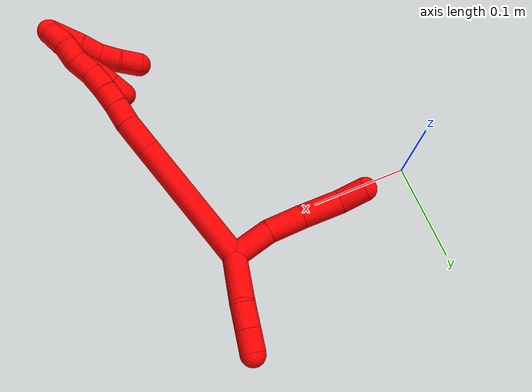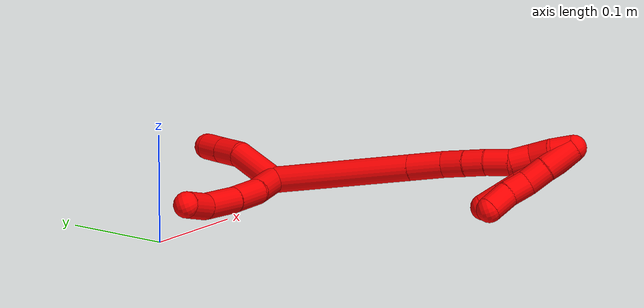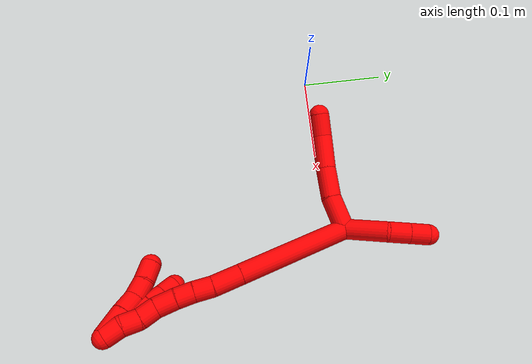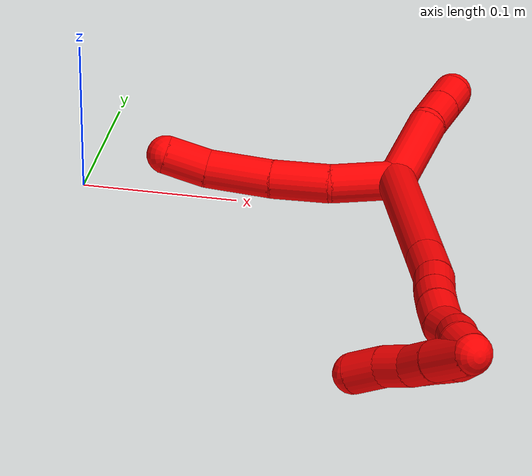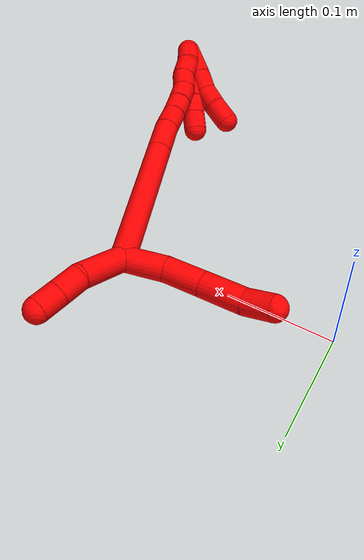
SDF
<sdf version="1.7">
 <world name="default">
  <model name="2">
   <static>0</static>
   <link name="2">
    <collision name="collision-cylinder-e_1_2_8">
     <pose>-0.017169 -0.009959 -0.006948 2.17993 -0.955213 -1.56291</pose>
     <geometry><cylinder><radius>0.0125</radius><length>0.042058</length></cylinder></geometry>
     <surface>
      <friction><ode><mu>1.16</mu><mu2>1.16</mu2><slip1>0</slip1><slip2>0</slip2></ode></friction>
      <contact><ode><kp>1e+06</kp><kd>1</kd><max_vel>0</max_vel><min_depth>0.001</min_depth></ode></contact>
     </surface>
    </collision>
    <visual name="visual-cylinder-e_1_2_8">
     <pose>-0.017169 -0.009959 -0.006948 2.17993 -0.955213 -1.56291</pose>
     <geometry><cylinder><radius>0.0125</radius><length>0.042058</length></cylinder></geometry>
     <material><ambient>1 0 0 1</ambient></material>
    </visual>
    <collision name="collision-cylinder-e_2_8_9">
     <pose>-0.049399 -0.026262 -0.023231 2.54471 -0.927634 -2.03885</pose>
     <geometry><cylinder><radius>0.0125</radius><length>0.037644</length></cylinder></geometry>
     <surface>
      <friction><ode><mu>1.16</mu><mu2>1.16</mu2><slip1>0</slip1><slip2>0</slip2></ode></friction>
      <contact><ode><kp>1e+06</kp><kd>1</kd><max_vel>0</max_vel><min_depth>0.001</min_depth></ode></contact>
     </surface>
    </collision>
    <visual name="visual-cylinder-e_2_8_9">
     <pose>-0.049399 -0.026262 -0.023231 2.54471 -0.927634 -2.03885</pose>
     <geometry><cylinder><radius>0.0125</radius><length>0.037644</length></cylinder></geometry>
     <material><ambient>1 0 0 1</ambient></material>
    </visual>
    <collision name="collision-cylinder-e_3_9_10">
     <pose>-0.081678 -0.038114 -0.043407 2.67152 -0.955991 -2.27564</pose>
     <geometry><cylinder><radius>0.0125</radius><length>0.042156</length></cylinder></geometry>
     <surface>
      <friction><ode><mu>1.16</mu><mu2>1.16</mu2><slip1>0</slip1><slip2>0</slip2></ode></friction>
      <contact><ode><kp>1e+06</kp><kd>1</kd><max_vel>0</max_vel><min_depth>0.001</min_depth></ode></contact>
     </surface>
    </collision>
    <visual name="visual-cylinder-e_3_9_10">
     <pose>-0.081678 -0.038114 -0.043407 2.67152 -0.955991 -2.27564</pose>
     <geometry><cylinder><radius>0.0125</radius><length>0.042156</length></cylinder></geometry>
     <material><ambient>1 0 0 1</ambient></material>
    </visual>
    <collision name="collision-cylinder-e_4_10_6">
     <pose>-0.111747 -0.04522 -0.059752 2.85895 -1.15108 -2.70988</pose>
     <geometry><cylinder><radius>0.0125</radius><length>0.028143</length></cylinder></geometry>
     <surface>
      <friction><ode><mu>1.16</mu><mu2>1.16</mu2><slip1>0</slip1><slip2>0</slip2></ode></friction>
      <contact><ode><kp>1e+06</kp><kd>1</kd><max_vel>0</max_vel><min_depth>0.001</min_depth></ode></contact>
     </surface>
    </collision>
    <visual name="visual-cylinder-e_4_10_6">
     <pose>-0.111747 -0.04522 -0.059752 2.85895 -1.15108 -2.70988</pose>
     <geometry><cylinder><radius>0.0125</radius><length>0.028143</length></cylinder></geometry>
     <material><ambient>1 0 0 1</ambient></material>
    </visual>
    <collision name="collision-cylinder-e_1_2_11">
     <pose>0.007398 0.021413 -0.013169 -2.12217 0.286201 -0.504549</pose>
     <geometry><cylinder><radius>0.0125</radius><length>0.052408</length></cylinder></geometry>
     <surface>
      <friction><ode><mu>1.16</mu><mu2>1.16</mu2><slip1>0</slip1><slip2>0</slip2></ode></friction>
      <contact><ode><kp>1e+06</kp><kd>1</kd><max_vel>0</max_vel><min_depth>0.001</min_depth></ode></contact>
     </surface>
    </collision>
    <visual name="visual-cylinder-e_1_2_11">
     <pose>0.007398 0.021413 -0.013169 -2.12217 0.286201 -0.504549</pose>
     <geometry><cylinder><radius>0.0125</radius><length>0.052408</length></cylinder></geometry>
     <material><ambient>1 0 0 1</ambient></material>
    </visual>
    <collision name="collision-cylinder-e_2_11_12">
     <pose>0.020225 0.050322 -0.034708 -2.41121 0.450101 -1.07901</pose>
     <geometry><cylinder><radius>0.0125</radius><length>0.02496</length></cylinder></geometry>
     <surface>
      <friction><ode><mu>1.16</mu><mu2>1.16</mu2><slip1>0</slip1><slip2>0</slip2></ode></friction>
      <contact><ode><kp>1e+06</kp><kd>1</kd><max_vel>0</max_vel><min_depth>0.001</min_depth></ode></contact>
     </surface>
    </collision>
    <visual name="visual-cylinder-e_2_11_12">
     <pose>0.020225 0.050322 -0.034708 -2.41121 0.450101 -1.07901</pose>
     <geometry><cylinder><radius>0.0125</radius><length>0.02496</length></cylinder></geometry>
     <material><ambient>1 0 0 1</ambient></material>
    </visual>
    <collision name="collision-cylinder-e_3_12_5">
     <pose>0.030534 0.064727 -0.050597 -2.39851 0.44585 -1.05386</pose>
     <geometry><cylinder><radius>0.0125</radius><length>0.022632</length></cylinder></geometry>
     <surface>
      <friction><ode><mu>1.16</mu><mu2>1.16</mu2><slip1>0</slip1><slip2>0</slip2></ode></friction>
      <contact><ode><kp>1e+06</kp><kd>1</kd><max_vel>0</max_vel><min_depth>0.001</min_depth></ode></contact>
     </surface>
    </collision>
    <visual name="visual-cylinder-e_3_12_5">
     <pose>0.030534 0.064727 -0.050597 -2.39851 0.44585 -1.05386</pose>
     <geometry><cylinder><radius>0.0125</radius><length>0.022632</length></cylinder></geometry>
     <material><ambient>1 0 0 1</ambient></material>
    </visual>
    <collision name="collision-cylinder-e_1_2_13">
     <pose>-0.008806 -0.021321 0.065216 0.315979 -0.127643 -0.020363</pose>
     <geometry><cylinder><radius>0.0125</radius><length>0.138352</length></cylinder></geometry>
     <surface>
      <friction><ode><mu>1.16</mu><mu2>1.16</mu2><slip1>0</slip1><slip2>0</slip2></ode></friction>
      <contact><ode><kp>1e+06</kp><kd>1</kd><max_vel>0</max_vel><min_depth>0.001</min_depth></ode></contact>
     </surface>
    </collision>
    <visual name="visual-cylinder-e_1_2_13">
     <pose>-0.008806 -0.021321 0.065216 0.315979 -0.127643 -0.020363</pose>
     <geometry><cylinder><radius>0.0125</radius><length>0.138352</length></cylinder></geometry>
     <material><ambient>1 0 0 1</ambient></material>
    </visual>
    <collision name="collision-cylinder-e_2_13_14">
     <pose>-0.019848 -0.047941 0.146625 0.316258 -0.130522 -0.020842</pose>
     <geometry><cylinder><radius>0.0125</radius><length>0.034367</length></cylinder></geometry>
     <surface>
      <friction><ode><mu>1.16</mu><mu2>1.16</mu2><slip1>0</slip1><slip2>0</slip2></ode></friction>
      <contact><ode><kp>1e+06</kp><kd>1</kd><max_vel>0</max_vel><min_depth>0.001</min_depth></ode></contact>
     </surface>
    </collision>
    <visual name="visual-cylinder-e_2_13_14">
     <pose>-0.019848 -0.047941 0.146625 0.316258 -0.130522 -0.020842</pose>
     <geometry><cylinder><radius>0.0125</radius><length>0.034367</length></cylinder></geometry>
     <material><ambient>1 0 0 1</ambient></material>
    </visual>
    <collision name="collision-cylinder-e_3_14_15">
     <pose>-0.024638 -0.057429 0.172713 0.400384 -0.233265 -0.047539</pose>
     <geometry><cylinder><radius>0.0125</radius><length>0.02209</length></cylinder></geometry>
     <surface>
      <friction><ode><mu>1.16</mu><mu2>1.16</mu2><slip1>0</slip1><slip2>0</slip2></ode></friction>
      <contact><ode><kp>1e+06</kp><kd>1</kd><max_vel>0</max_vel><min_depth>0.001</min_depth></ode></contact>
     </surface>
    </collision>
    <visual name="visual-cylinder-e_3_14_15">
     <pose>-0.024638 -0.057429 0.172713 0.400384 -0.233265 -0.047539</pose>
     <geometry><cylinder><radius>0.0125</radius><length>0.02209</length></cylinder></geometry>
     <material><ambient>1 0 0 1</ambient></material>
    </visual>
    <collision name="collision-cylinder-e_4_15_16">
     <pose>-0.028829 -0.065244 0.191964 0.369846 -0.161831 -0.030336</pose>
     <geometry><cylinder><radius>0.0125</radius><length>0.020333</length></cylinder></geometry>
     <surface>
      <friction><ode><mu>1.16</mu><mu2>1.16</mu2><slip1>0</slip1><slip2>0</slip2></ode></friction>
      <contact><ode><kp>1e+06</kp><kd>1</kd><max_vel>0</max_vel><min_depth>0.001</min_depth></ode></contact>
     </surface>
    </collision>
    <visual name="visual-cylinder-e_4_15_16">
     <pose>-0.028829 -0.065244 0.191964 0.369846 -0.161831 -0.030336</pose>
     <geometry><cylinder><radius>0.0125</radius><length>0.020333</length></cylinder></geometry>
     <material><ambient>1 0 0 1</ambient></material>
    </visual>
    <collision name="collision-cylinder-e_5_16_17">
     <pose>-0.031316 -0.073459 0.212291 0.396034 -0.071248 -0.014301</pose>
     <geometry><cylinder><radius>0.0125</radius><length>0.023847</length></cylinder></geometry>
     <surface>
      <friction><ode><mu>1.16</mu><mu2>1.16</mu2><slip1>0</slip1><slip2>0</slip2></ode></friction>
      <contact><ode><kp>1e+06</kp><kd>1</kd><max_vel>0</max_vel><min_depth>0.001</min_depth></ode></contact>
     </surface>
    </collision>
    <visual name="visual-cylinder-e_5_16_17">
     <pose>-0.031316 -0.073459 0.212291 0.396034 -0.071248 -0.014301</pose>
     <geometry><cylinder><radius>0.0125</radius><length>0.023847</length></cylinder></geometry>
     <material><ambient>1 0 0 1</ambient></material>
    </visual>
    <collision name="collision-cylinder-e_6_17_18">
     <pose>-0.032092 -0.078979 0.233546 0.090424 0.007049 0.000319</pose>
     <geometry><cylinder><radius>0.0125</radius><length>0.020648</length></cylinder></geometry>
     <surface>
      <friction><ode><mu>1.16</mu><mu2>1.16</mu2><slip1>0</slip1><slip2>0</slip2></ode></friction>
      <contact><ode><kp>1e+06</kp><kd>1</kd><max_vel>0</max_vel><min_depth>0.001</min_depth></ode></contact>
     </surface>
    </collision>
    <visual name="visual-cylinder-e_6_17_18">
     <pose>-0.032092 -0.078979 0.233546 0.090424 0.007049 0.000319</pose>
     <geometry><cylinder><radius>0.0125</radius><length>0.020648</length></cylinder></geometry>
     <material><ambient>1 0 0 1</ambient></material>
    </visual>
    <collision name="collision-cylinder-e_7_18_19">
     <pose>-0.034651 -0.081834 0.253446 0.197295 -0.262189 -0.026097</pose>
     <geometry><cylinder><radius>0.0125</radius><length>0.020312</length></cylinder></geometry>
     <surface>
      <friction><ode><mu>1.16</mu><mu2>1.16</mu2><slip1>0</slip1><slip2>0</slip2></ode></friction>
      <contact><ode><kp>1e+06</kp><kd>1</kd><max_vel>0</max_vel><min_depth>0.001</min_depth></ode></contact>
     </surface>
    </collision>
    <visual name="visual-cylinder-e_7_18_19">
     <pose>-0.034651 -0.081834 0.253446 0.197295 -0.262189 -0.026097</pose>
     <geometry><cylinder><radius>0.0125</radius><length>0.020312</length></cylinder></geometry>
     <material><ambient>1 0 0 1</ambient></material>
    </visual>
    <collision name="collision-cylinder-e_8_19_1">
     <pose>-0.037139 -0.085567 0.272925 0.181584 0.014382 0.001309</pose>
     <geometry><cylinder><radius>0.0125</radius><length>0.020052</length></cylinder></geometry>
     <surface>
      <friction><ode><mu>1.16</mu><mu2>1.16</mu2><slip1>0</slip1><slip2>0</slip2></ode></friction>
      <contact><ode><kp>1e+06</kp><kd>1</kd><max_vel>0</max_vel><min_depth>0.001</min_depth></ode></contact>
     </surface>
    </collision>
    <visual name="visual-cylinder-e_8_19_1">
     <pose>-0.037139 -0.085567 0.272925 0.181584 0.014382 0.001309</pose>
     <geometry><cylinder><radius>0.0125</radius><length>0.020052</length></cylinder></geometry>
     <material><ambient>1 0 0 1</ambient></material>
    </visual>
    <collision name="collision-cylinder-e_1_1_20">
     <pose>-0.03509 -0.090239 0.273395 2.84581 0.191697 1.1462</pose>
     <geometry><cylinder><radius>0.0125</radius><length>0.02</length></cylinder></geometry>
     <surface>
      <friction><ode><mu>1.16</mu><mu2>1.16</mu2><slip1>0</slip1><slip2>0</slip2></ode></friction>
      <contact><ode><kp>1e+06</kp><kd>1</kd><max_vel>0</max_vel><min_depth>0.001</min_depth></ode></contact>
     </surface>
    </collision>
    <visual name="visual-cylinder-e_1_1_20">
     <pose>-0.03509 -0.090239 0.273395 2.84581 0.191697 1.1462</pose>
     <geometry><cylinder><radius>0.0125</radius><length>0.02</length></cylinder></geometry>
     <material><ambient>1 0 0 1</ambient></material>
    </visual>
    <collision name="collision-cylinder-e_2_20_21">
     <pose>-0.032277 -0.095075 0.254243 2.94201 0.090861 0.852427</pose>
     <geometry><cylinder><radius>0.0125</radius><length>0.02</length></cylinder></geometry>
     <surface>
      <friction><ode><mu>1.16</mu><mu2>1.16</mu2><slip1>0</slip1><slip2>0</slip2></ode></friction>
      <contact><ode><kp>1e+06</kp><kd>1</kd><max_vel>0</max_vel><min_depth>0.001</min_depth></ode></contact>
     </surface>
    </collision>
    <visual name="visual-cylinder-e_2_20_21">
     <pose>-0.032277 -0.095075 0.254243 2.94201 0.090861 0.852427</pose>
     <geometry><cylinder><radius>0.0125</radius><length>0.02</length></cylinder></geometry>
     <material><ambient>1 0 0 1</ambient></material>
    </visual>
    <collision name="collision-cylinder-e_3_21_22">
     <pose>-0.030731 -0.099012 0.234697 2.94357 0.063897 0.622535</pose>
     <geometry><cylinder><radius>0.0125</radius><length>0.02</length></cylinder></geometry>
     <surface>
      <friction><ode><mu>1.16</mu><mu2>1.16</mu2><slip1>0</slip1><slip2>0</slip2></ode></friction>
      <contact><ode><kp>1e+06</kp><kd>1</kd><max_vel>0</max_vel><min_depth>0.001</min_depth></ode></contact>
     </surface>
    </collision>
    <visual name="visual-cylinder-e_3_21_22">
     <pose>-0.030731 -0.099012 0.234697 2.94357 0.063897 0.622535</pose>
     <geometry><cylinder><radius>0.0125</radius><length>0.02</length></cylinder></geometry>
     <material><ambient>1 0 0 1</ambient></material>
    </visual>
    <collision name="collision-cylinder-e_4_22_23">
     <pose>-0.028601 -0.102575 0.215155 2.97918 0.149712 1.48914</pose>
     <geometry><cylinder><radius>0.0125</radius><length>0.02</length></cylinder></geometry>
     <surface>
      <friction><ode><mu>1.16</mu><mu2>1.16</mu2><slip1>0</slip1><slip2>0</slip2></ode></friction>
      <contact><ode><kp>1e+06</kp><kd>1</kd><max_vel>0</max_vel><min_depth>0.001</min_depth></ode></contact>
     </surface>
    </collision>
    <visual name="visual-cylinder-e_4_22_23">
     <pose>-0.028601 -0.102575 0.215155 2.97918 0.149712 1.48914</pose>
     <geometry><cylinder><radius>0.0125</radius><length>0.02</length></cylinder></geometry>
     <material><ambient>1 0 0 1</ambient></material>
    </visual>
    <collision name="collision-cylinder-e_5_23_4">
     <pose>-0.026302 -0.106124 0.195622 2.94463 0.080845 0.777099</pose>
     <geometry><cylinder><radius>0.0125</radius><length>0.02</length></cylinder></geometry>
     <surface>
      <friction><ode><mu>1.16</mu><mu2>1.16</mu2><slip1>0</slip1><slip2>0</slip2></ode></friction>
      <contact><ode><kp>1e+06</kp><kd>1</kd><max_vel>0</max_vel><min_depth>0.001</min_depth></ode></contact>
     </surface>
    </collision>
    <visual name="visual-cylinder-e_5_23_4">
     <pose>-0.026302 -0.106124 0.195622 2.94463 0.080845 0.777099</pose>
     <geometry><cylinder><radius>0.0125</radius><length>0.02</length></cylinder></geometry>
     <material><ambient>1 0 0 1</ambient></material>
    </visual>
    <collision name="collision-cylinder-e_1_1_24">
     <pose>-0.039358 -0.093315 0.267787 2.76461 -0.145479 -0.729784</pose>
     <geometry><cylinder><radius>0.0125</radius><length>0.032605</length></cylinder></geometry>
     <surface>
      <friction><ode><mu>1.16</mu><mu2>1.16</mu2><slip1>0</slip1><slip2>0</slip2></ode></friction>
      <contact><ode><kp>1e+06</kp><kd>1</kd><max_vel>0</max_vel><min_depth>0.001</min_depth></ode></contact>
     </surface>
    </collision>
    <visual name="visual-cylinder-e_1_1_24">
     <pose>-0.039358 -0.093315 0.267787 2.76461 -0.145479 -0.729784</pose>
     <geometry><cylinder><radius>0.0125</radius><length>0.032605</length></cylinder></geometry>
     <material><ambient>1 0 0 1</ambient></material>
    </visual>
    <collision name="collision-cylinder-e_2_24_25">
     <pose>-0.042594 -0.103111 0.24238 2.78668 -0.078366 -0.430413</pose>
     <geometry><cylinder><radius>0.0125</radius><length>0.022271</length></cylinder></geometry>
     <surface>
      <friction><ode><mu>1.16</mu><mu2>1.16</mu2><slip1>0</slip1><slip2>0</slip2></ode></friction>
      <contact><ode><kp>1e+06</kp><kd>1</kd><max_vel>0</max_vel><min_depth>0.001</min_depth></ode></contact>
     </surface>
    </collision>
    <visual name="visual-cylinder-e_2_24_25">
     <pose>-0.042594 -0.103111 0.24238 2.78668 -0.078366 -0.430413</pose>
     <geometry><cylinder><radius>0.0125</radius><length>0.022271</length></cylinder></geometry>
     <material><ambient>1 0 0 1</ambient></material>
    </visual>
    <collision name="collision-cylinder-e_3_25_26">
     <pose>-0.046806 -0.110246 0.22244 2.81039 -0.320047 -1.53593</pose>
     <geometry><cylinder><radius>0.0125</radius><length>0.021237</length></cylinder></geometry>
     <surface>
      <friction><ode><mu>1.16</mu><mu2>1.16</mu2><slip1>0</slip1><slip2>0</slip2></ode></friction>
      <contact><ode><kp>1e+06</kp><kd>1</kd><max_vel>0</max_vel><min_depth>0.001</min_depth></ode></contact>
     </surface>
    </collision>
    <visual name="visual-cylinder-e_3_25_26">
     <pose>-0.046806 -0.110246 0.22244 2.81039 -0.320047 -1.53593</pose>
     <geometry><cylinder><radius>0.0125</radius><length>0.021237</length></cylinder></geometry>
     <material><ambient>1 0 0 1</ambient></material>
    </visual>
    <collision name="collision-cylinder-e_4_26_3">
     <pose>-0.054018 -0.119214 0.203147 2.61382 -0.330096 -1.10489</pose>
     <geometry><cylinder><radius>0.0125</radius><length>0.023887</length></cylinder></geometry>
     <surface>
      <friction><ode><mu>1.16</mu><mu2>1.16</mu2><slip1>0</slip1><slip2>0</slip2></ode></friction>
      <contact><ode><kp>1e+06</kp><kd>1</kd><max_vel>0</max_vel><min_depth>0.001</min_depth></ode></contact>
     </surface>
    </collision>
    <visual name="visual-cylinder-e_4_26_3">
     <pose>-0.054018 -0.119214 0.203147 2.61382 -0.330096 -1.10489</pose>
     <geometry><cylinder><radius>0.0125</radius><length>0.023887</length></cylinder></geometry>
     <material><ambient>1 0 0 1</ambient></material>
    </visual>
    <collision name="collision-sphere-3">
     <pose>-0.057889 -0.124904 0.193385 0 -0 0</pose>
     <geometry><sphere><radius>0.0125</radius></sphere></geometry>
     <surface>
      <friction><ode><mu>1.16</mu><mu2>1.16</mu2><slip1>0</slip1><slip2>0</slip2></ode></friction>
      <contact><ode><kp>1e+06</kp><kd>1</kd><max_vel>0</max_vel><min_depth>0.001</min_depth></ode></contact>
     </surface>
    </collision>
    <visual name="visual-sphere-3">
     <pose>-0.057889 -0.124904 0.193385 0 -0 0</pose>
     <geometry><sphere><radius>0.0125</radius></sphere></geometry>
     <material><ambient>1 0 0 1</ambient></material>
    </visual>
    <collision name="collision-sphere-26">
     <pose>-0.050147 -0.113524 0.212908 0 -0 0</pose>
     <geometry><sphere><radius>0.0125</radius></sphere></geometry>
     <surface>
      <friction><ode><mu>1.16</mu><mu2>1.16</mu2><slip1>0</slip1><slip2>0</slip2></ode></friction>
      <contact><ode><kp>1e+06</kp><kd>1</kd><max_vel>0</max_vel><min_depth>0.001</min_depth></ode></contact>
     </surface>
    </collision>
    <visual name="visual-sphere-26">
     <pose>-0.050147 -0.113524 0.212908 0 -0 0</pose>
     <geometry><sphere><radius>0.0125</radius></sphere></geometry>
     <material><ambient>1 0 0 1</ambient></material>
    </visual>
    <collision name="collision-sphere-25">
     <pose>-0.043465 -0.106968 0.231971 0 -0 0</pose>
     <geometry><sphere><radius>0.0125</radius></sphere></geometry>
     <surface>
      <friction><ode><mu>1.16</mu><mu2>1.16</mu2><slip1>0</slip1><slip2>0</slip2></ode></friction>
      <contact><ode><kp>1e+06</kp><kd>1</kd><max_vel>0</max_vel><min_depth>0.001</min_depth></ode></contact>
     </surface>
    </collision>
    <visual name="visual-sphere-25">
     <pose>-0.043465 -0.106968 0.231971 0 -0 0</pose>
     <geometry><sphere><radius>0.0125</radius></sphere></geometry>
     <material><ambient>1 0 0 1</ambient></material>
    </visual>
    <collision name="collision-sphere-24">
     <pose>-0.041722 -0.099253 0.25279 0 -0 0</pose>
     <geometry><sphere><radius>0.0125</radius></sphere></geometry>
     <surface>
      <friction><ode><mu>1.16</mu><mu2>1.16</mu2><slip1>0</slip1><slip2>0</slip2></ode></friction>
      <contact><ode><kp>1e+06</kp><kd>1</kd><max_vel>0</max_vel><min_depth>0.001</min_depth></ode></contact>
     </surface>
    </collision>
    <visual name="visual-sphere-24">
     <pose>-0.041722 -0.099253 0.25279 0 -0 0</pose>
     <geometry><sphere><radius>0.0125</radius></sphere></geometry>
     <material><ambient>1 0 0 1</ambient></material>
    </visual>
    <collision name="collision-sphere-4">
     <pose>-0.025495 -0.108074 0.185848 0 -0 0</pose>
     <geometry><sphere><radius>0.0125</radius></sphere></geometry>
     <surface>
      <friction><ode><mu>1.16</mu><mu2>1.16</mu2><slip1>0</slip1><slip2>0</slip2></ode></friction>
      <contact><ode><kp>1e+06</kp><kd>1</kd><max_vel>0</max_vel><min_depth>0.001</min_depth></ode></contact>
     </surface>
    </collision>
    <visual name="visual-sphere-4">
     <pose>-0.025495 -0.108074 0.185848 0 -0 0</pose>
     <geometry><sphere><radius>0.0125</radius></sphere></geometry>
     <material><ambient>1 0 0 1</ambient></material>
    </visual>
    <collision name="collision-sphere-23">
     <pose>-0.02711 -0.104174 0.205397 0 -0 0</pose>
     <geometry><sphere><radius>0.0125</radius></sphere></geometry>
     <surface>
      <friction><ode><mu>1.16</mu><mu2>1.16</mu2><slip1>0</slip1><slip2>0</slip2></ode></friction>
      <contact><ode><kp>1e+06</kp><kd>1</kd><max_vel>0</max_vel><min_depth>0.001</min_depth></ode></contact>
     </surface>
    </collision>
    <visual name="visual-sphere-23">
     <pose>-0.02711 -0.104174 0.205397 0 -0 0</pose>
     <geometry><sphere><radius>0.0125</radius></sphere></geometry>
     <material><ambient>1 0 0 1</ambient></material>
    </visual>
    <collision name="collision-sphere-22">
     <pose>-0.030093 -0.100976 0.224913 0 -0 0</pose>
     <geometry><sphere><radius>0.0125</radius></sphere></geometry>
     <surface>
      <friction><ode><mu>1.16</mu><mu2>1.16</mu2><slip1>0</slip1><slip2>0</slip2></ode></friction>
      <contact><ode><kp>1e+06</kp><kd>1</kd><max_vel>0</max_vel><min_depth>0.001</min_depth></ode></contact>
     </surface>
    </collision>
    <visual name="visual-sphere-22">
     <pose>-0.030093 -0.100976 0.224913 0 -0 0</pose>
     <geometry><sphere><radius>0.0125</radius></sphere></geometry>
     <material><ambient>1 0 0 1</ambient></material>
    </visual>
    <collision name="collision-sphere-21">
     <pose>-0.03137 -0.097049 0.244482 0 -0 0</pose>
     <geometry><sphere><radius>0.0125</radius></sphere></geometry>
     <surface>
      <friction><ode><mu>1.16</mu><mu2>1.16</mu2><slip1>0</slip1><slip2>0</slip2></ode></friction>
      <contact><ode><kp>1e+06</kp><kd>1</kd><max_vel>0</max_vel><min_depth>0.001</min_depth></ode></contact>
     </surface>
    </collision>
    <visual name="visual-sphere-21">
     <pose>-0.03137 -0.097049 0.244482 0 -0 0</pose>
     <geometry><sphere><radius>0.0125</radius></sphere></geometry>
     <material><ambient>1 0 0 1</ambient></material>
    </visual>
    <collision name="collision-sphere-20">
     <pose>-0.033185 -0.0931 0.264004 0 -0 0</pose>
     <geometry><sphere><radius>0.0125</radius></sphere></geometry>
     <surface>
      <friction><ode><mu>1.16</mu><mu2>1.16</mu2><slip1>0</slip1><slip2>0</slip2></ode></friction>
      <contact><ode><kp>1e+06</kp><kd>1</kd><max_vel>0</max_vel><min_depth>0.001</min_depth></ode></contact>
     </surface>
    </collision>
    <visual name="visual-sphere-20">
     <pose>-0.033185 -0.0931 0.264004 0 -0 0</pose>
     <geometry><sphere><radius>0.0125</radius></sphere></geometry>
     <material><ambient>1 0 0 1</ambient></material>
    </visual>
    <collision name="collision-sphere-11">
     <pose>0.014795 0.042825 -0.026338 0 -0 0</pose>
     <geometry><sphere><radius>0.0125</radius></sphere></geometry>
     <surface>
      <friction><ode><mu>1.16</mu><mu2>1.16</mu2><slip1>0</slip1><slip2>0</slip2></ode></friction>
      <contact><ode><kp>1e+06</kp><kd>1</kd><max_vel>0</max_vel><min_depth>0.001</min_depth></ode></contact>
     </surface>
    </collision>
    <visual name="visual-sphere-11">
     <pose>0.014795 0.042825 -0.026338 0 -0 0</pose>
     <geometry><sphere><radius>0.0125</radius></sphere></geometry>
     <material><ambient>1 0 0 1</ambient></material>
    </visual>
    <collision name="collision-sphere-6">
     <pose>-0.124597 -0.046819 -0.065259 0 -0 0</pose>
     <geometry><sphere><radius>0.0125</radius></sphere></geometry>
     <surface>
      <friction><ode><mu>1.16</mu><mu2>1.16</mu2><slip1>0</slip1><slip2>0</slip2></ode></friction>
      <contact><ode><kp>1e+06</kp><kd>1</kd><max_vel>0</max_vel><min_depth>0.001</min_depth></ode></contact>
     </surface>
    </collision>
    <visual name="visual-sphere-6">
     <pose>-0.124597 -0.046819 -0.065259 0 -0 0</pose>
     <geometry><sphere><radius>0.0125</radius></sphere></geometry>
     <material><ambient>1 0 0 1</ambient></material>
    </visual>
    <collision name="collision-sphere-10">
     <pose>-0.098897 -0.043621 -0.054246 0 -0 0</pose>
     <geometry><sphere><radius>0.0125</radius></sphere></geometry>
     <surface>
      <friction><ode><mu>1.16</mu><mu2>1.16</mu2><slip1>0</slip1><slip2>0</slip2></ode></friction>
      <contact><ode><kp>1e+06</kp><kd>1</kd><max_vel>0</max_vel><min_depth>0.001</min_depth></ode></contact>
     </surface>
    </collision>
    <visual name="visual-sphere-10">
     <pose>-0.098897 -0.043621 -0.054246 0 -0 0</pose>
     <geometry><sphere><radius>0.0125</radius></sphere></geometry>
     <material><ambient>1 0 0 1</ambient></material>
    </visual>
    <collision name="collision-sphere-9">
     <pose>-0.06446 -0.032607 -0.032568 0 -0 0</pose>
     <geometry><sphere><radius>0.0125</radius></sphere></geometry>
     <surface>
      <friction><ode><mu>1.16</mu><mu2>1.16</mu2><slip1>0</slip1><slip2>0</slip2></ode></friction>
      <contact><ode><kp>1e+06</kp><kd>1</kd><max_vel>0</max_vel><min_depth>0.001</min_depth></ode></contact>
     </surface>
    </collision>
    <visual name="visual-sphere-9">
     <pose>-0.06446 -0.032607 -0.032568 0 -0 0</pose>
     <geometry><sphere><radius>0.0125</radius></sphere></geometry>
     <material><ambient>1 0 0 1</ambient></material>
    </visual>
    <collision name="collision-sphere-2">
     <geometry><sphere><radius>0.0125</radius></sphere></geometry>
     <surface>
      <friction><ode><mu>1.16</mu><mu2>1.16</mu2><slip1>0</slip1><slip2>0</slip2></ode></friction>
      <contact><ode><kp>1e+06</kp><kd>1</kd><max_vel>0</max_vel><min_depth>0.001</min_depth></ode></contact>
     </surface>
    </collision>
    <visual name="visual-sphere-2">
     <geometry><sphere><radius>0.0125</radius></sphere></geometry>
     <material><ambient>1 0 0 1</ambient></material>
    </visual>
    <collision name="collision-sphere-19">
     <pose>-0.037284 -0.083756 0.263065 0 -0 0</pose>
     <geometry><sphere><radius>0.0125</radius></sphere></geometry>
     <surface>
      <friction><ode><mu>1.16</mu><mu2>1.16</mu2><slip1>0</slip1><slip2>0</slip2></ode></friction>
      <contact><ode><kp>1e+06</kp><kd>1</kd><max_vel>0</max_vel><min_depth>0.001</min_depth></ode></contact>
     </surface>
    </collision>
    <visual name="visual-sphere-19">
     <pose>-0.037284 -0.083756 0.263065 0 -0 0</pose>
     <geometry><sphere><radius>0.0125</radius></sphere></geometry>
     <material><ambient>1 0 0 1</ambient></material>
    </visual>
    <collision name="collision-sphere-8">
     <pose>-0.034338 -0.019918 -0.013895 0 -0 0</pose>
     <geometry><sphere><radius>0.0125</radius></sphere></geometry>
     <surface>
      <friction><ode><mu>1.16</mu><mu2>1.16</mu2><slip1>0</slip1><slip2>0</slip2></ode></friction>
      <contact><ode><kp>1e+06</kp><kd>1</kd><max_vel>0</max_vel><min_depth>0.001</min_depth></ode></contact>
     </surface>
    </collision>
    <visual name="visual-sphere-8">
     <pose>-0.034338 -0.019918 -0.013895 0 -0 0</pose>
     <geometry><sphere><radius>0.0125</radius></sphere></geometry>
     <material><ambient>1 0 0 1</ambient></material>
    </visual>
    <collision name="collision-sphere-12">
     <pose>0.025654 0.057819 -0.043079 0 -0 0</pose>
     <geometry><sphere><radius>0.0125</radius></sphere></geometry>
     <surface>
      <friction><ode><mu>1.16</mu><mu2>1.16</mu2><slip1>0</slip1><slip2>0</slip2></ode></friction>
      <contact><ode><kp>1e+06</kp><kd>1</kd><max_vel>0</max_vel><min_depth>0.001</min_depth></ode></contact>
     </surface>
    </collision>
    <visual name="visual-sphere-12">
     <pose>0.025654 0.057819 -0.043079 0 -0 0</pose>
     <geometry><sphere><radius>0.0125</radius></sphere></geometry>
     <material><ambient>1 0 0 1</ambient></material>
    </visual>
    <collision name="collision-sphere-5">
     <pose>0.035414 0.071634 -0.058116 0 -0 0</pose>
     <geometry><sphere><radius>0.0125</radius></sphere></geometry>
     <surface>
      <friction><ode><mu>1.16</mu><mu2>1.16</mu2><slip1>0</slip1><slip2>0</slip2></ode></friction>
      <contact><ode><kp>1e+06</kp><kd>1</kd><max_vel>0</max_vel><min_depth>0.001</min_depth></ode></contact>
     </surface>
    </collision>
    <visual name="visual-sphere-5">
     <pose>0.035414 0.071634 -0.058116 0 -0 0</pose>
     <geometry><sphere><radius>0.0125</radius></sphere></geometry>
     <material><ambient>1 0 0 1</ambient></material>
    </visual>
    <collision name="collision-sphere-13">
     <pose>-0.017612 -0.042643 0.130433 0 -0 0</pose>
     <geometry><sphere><radius>0.0125</radius></sphere></geometry>
     <surface>
      <friction><ode><mu>1.16</mu><mu2>1.16</mu2><slip1>0</slip1><slip2>0</slip2></ode></friction>
      <contact><ode><kp>1e+06</kp><kd>1</kd><max_vel>0</max_vel><min_depth>0.001</min_depth></ode></contact>
     </surface>
    </collision>
    <visual name="visual-sphere-13">
     <pose>-0.017612 -0.042643 0.130433 0 -0 0</pose>
     <geometry><sphere><radius>0.0125</radius></sphere></geometry>
     <material><ambient>1 0 0 1</ambient></material>
    </visual>
    <collision name="collision-sphere-14">
     <pose>-0.022085 -0.05324 0.162817 0 -0 0</pose>
     <geometry><sphere><radius>0.0125</radius></sphere></geometry>
     <surface>
      <friction><ode><mu>1.16</mu><mu2>1.16</mu2><slip1>0</slip1><slip2>0</slip2></ode></friction>
      <contact><ode><kp>1e+06</kp><kd>1</kd><max_vel>0</max_vel><min_depth>0.001</min_depth></ode></contact>
     </surface>
    </collision>
    <visual name="visual-sphere-14">
     <pose>-0.022085 -0.05324 0.162817 0 -0 0</pose>
     <geometry><sphere><radius>0.0125</radius></sphere></geometry>
     <material><ambient>1 0 0 1</ambient></material>
    </visual>
    <collision name="collision-sphere-15">
     <pose>-0.027191 -0.061617 0.182609 0 -0 0</pose>
     <geometry><sphere><radius>0.0125</radius></sphere></geometry>
     <surface>
      <friction><ode><mu>1.16</mu><mu2>1.16</mu2><slip1>0</slip1><slip2>0</slip2></ode></friction>
      <contact><ode><kp>1e+06</kp><kd>1</kd><max_vel>0</max_vel><min_depth>0.001</min_depth></ode></contact>
     </surface>
    </collision>
    <visual name="visual-sphere-15">
     <pose>-0.027191 -0.061617 0.182609 0 -0 0</pose>
     <geometry><sphere><radius>0.0125</radius></sphere></geometry>
     <material><ambient>1 0 0 1</ambient></material>
    </visual>
    <collision name="collision-sphere-16">
     <pose>-0.030467 -0.068871 0.201319 0 -0 0</pose>
     <geometry><sphere><radius>0.0125</radius></sphere></geometry>
     <surface>
      <friction><ode><mu>1.16</mu><mu2>1.16</mu2><slip1>0</slip1><slip2>0</slip2></ode></friction>
      <contact><ode><kp>1e+06</kp><kd>1</kd><max_vel>0</max_vel><min_depth>0.001</min_depth></ode></contact>
     </surface>
    </collision>
    <visual name="visual-sphere-16">
     <pose>-0.030467 -0.068871 0.201319 0 -0 0</pose>
     <geometry><sphere><radius>0.0125</radius></sphere></geometry>
     <material><ambient>1 0 0 1</ambient></material>
    </visual>
    <collision name="collision-sphere-17">
     <pose>-0.032164 -0.078047 0.223264 0 -0 0</pose>
     <geometry><sphere><radius>0.0125</radius></sphere></geometry>
     <surface>
      <friction><ode><mu>1.16</mu><mu2>1.16</mu2><slip1>0</slip1><slip2>0</slip2></ode></friction>
      <contact><ode><kp>1e+06</kp><kd>1</kd><max_vel>0</max_vel><min_depth>0.001</min_depth></ode></contact>
     </surface>
    </collision>
    <visual name="visual-sphere-17">
     <pose>-0.032164 -0.078047 0.223264 0 -0 0</pose>
     <geometry><sphere><radius>0.0125</radius></sphere></geometry>
     <material><ambient>1 0 0 1</ambient></material>
    </visual>
    <collision name="collision-sphere-18">
     <pose>-0.032019 -0.079911 0.243828 0 -0 0</pose>
     <geometry><sphere><radius>0.0125</radius></sphere></geometry>
     <surface>
      <friction><ode><mu>1.16</mu><mu2>1.16</mu2><slip1>0</slip1><slip2>0</slip2></ode></friction>
      <contact><ode><kp>1e+06</kp><kd>1</kd><max_vel>0</max_vel><min_depth>0.001</min_depth></ode></contact>
     </surface>
    </collision>
    <visual name="visual-sphere-18">
     <pose>-0.032019 -0.079911 0.243828 0 -0 0</pose>
     <geometry><sphere><radius>0.0125</radius></sphere></geometry>
     <material><ambient>1 0 0 1</ambient></material>
    </visual>
    <collision name="collision-sphere-1">
     <pose>-0.036995 -0.087377 0.282785 0 -0 0</pose>
     <geometry><sphere><radius>0.0125</radius></sphere></geometry>
     <surface>
      <friction><ode><mu>1.16</mu><mu2>1.16</mu2><slip1>0</slip1><slip2>0</slip2></ode></friction>
      <contact><ode><kp>1e+06</kp><kd>1</kd><max_vel>0</max_vel><min_depth>0.001</min_depth></ode></contact>
     </surface>
    </collision>
    <visual name="visual-sphere-1">
     <pose>-0.036995 -0.087377 0.282785 0 -0 0</pose>
     <geometry><sphere><radius>0.0125</radius></sphere></geometry>
     <material><ambient>1 0 0 1</ambient></material>
    </visual>
    <inertial>
     <pose>-0.028068 -0.04638 0.109432 0 -0 0</pose>
     <mass>0.75</mass>
     <inertia>
      <ixx>0.000218</ixx>
      <ixy>0</ixy>
      <ixz>0</ixz>
      <iyy>0.000198</iyy>
      <iyz>0</iyz>
      <izz>0.000117</izz>
     </inertia>
    </inertial>
   </link>
   <pose>0.199691 0.021641 0.014017 1.13469 0.572512 0.347429</pose>
  </model>
 </world>
</sdf>
